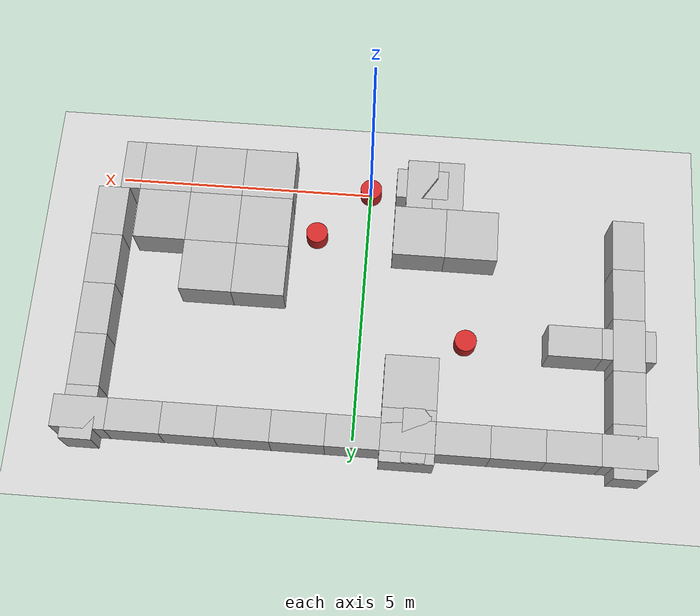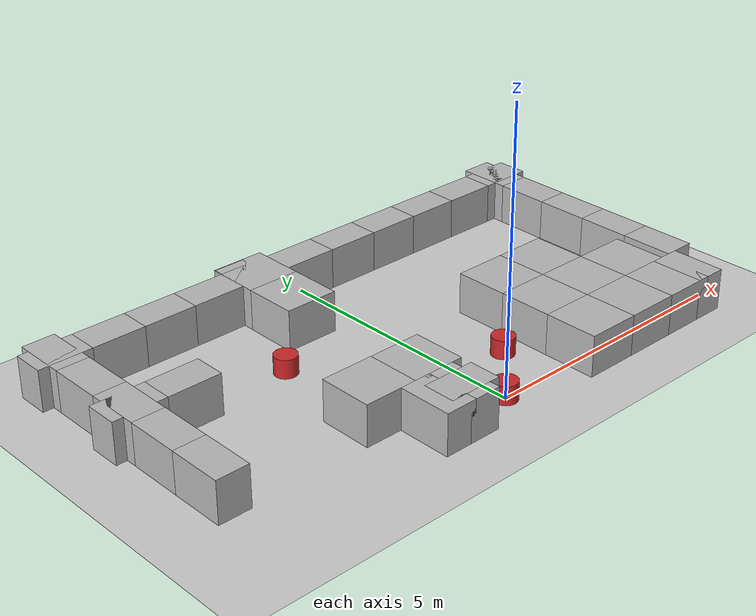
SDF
<sdf version="1.4">
 <world name="default">
  <model name="ground_plane">
   <static>1</static>
   <link name="link">
    <collision name="collision">
     <geometry><plane><normal>0 0 1</normal><size>100 100</size></plane></geometry>
     <surface><friction><ode><mu>100</mu><mu2>50</mu2></ode></friction></surface>
    </collision>
    <visual name="visual">
     <cast_shadows>0</cast_shadows>
     <geometry><plane><normal>0 0 1</normal><size>100 100</size></plane></geometry>
     <material>
      <script><uri>file://media/materials/scripts/gazebo.material</uri><name>Gazebo/Grey</name></script>
     </material>
    </visual>
    <velocity_decay><linear>0</linear><angular>0</angular></velocity_decay>
   </link>
  </model>
  <model name="wall_17">
   <static>1</static>
   <link name="link">
    <pose>0 0 0.25 0 -0 0</pose>
    <collision name="collision"><geometry><box><size>0.6 1 1</size></box></geometry></collision>
    <visual name="visual">
     <geometry>
      <mesh><uri>model://brick_box_3x1x3/meshes/simple_box.dae</uri><scale>0.6 1 1</scale></mesh>
     </geometry>
     <material>
      <script>
       <uri>model://brick_box_3x1x3/materials/scripts</uri>
       <uri>model://brick_box_3x1x3/materials/textures</uri>
       <name>BrickBox/Diffuse</name>
      </script>
     </material>
    </visual>
    <velocity_decay><linear>0</linear><angular>0</angular></velocity_decay>
   </link>
   <pose>5 1 0 0 -0 0</pose>
  </model>
  <model name="wall_18">
   <static>1</static>
   <link name="link">
    <pose>0 0 0.25 0 -0 0</pose>
    <collision name="collision"><geometry><box><size>0.6 1 1</size></box></geometry></collision>
    <visual name="visual">
     <geometry>
      <mesh><uri>model://brick_box_3x1x3/meshes/simple_box.dae</uri><scale>0.6 1 1</scale></mesh>
     </geometry>
     <material>
      <script>
       <uri>model://brick_box_3x1x3/materials/scripts</uri>
       <uri>model://brick_box_3x1x3/materials/textures</uri>
       <name>BrickBox/Diffuse</name>
      </script>
     </material>
    </visual>
    <velocity_decay><linear>0</linear><angular>0</angular></velocity_decay>
   </link>
   <pose>5 2 0 0 -0 0</pose>
  </model>
  <model name="wall_19">
   <static>1</static>
   <link name="link">
    <pose>0 0 0.25 0 -0 0</pose>
    <collision name="collision"><geometry><box><size>0.6 1 1</size></box></geometry></collision>
    <visual name="visual">
     <geometry>
      <mesh><uri>model://brick_box_3x1x3/meshes/simple_box.dae</uri><scale>0.6 1 1</scale></mesh>
     </geometry>
     <material>
      <script>
       <uri>model://brick_box_3x1x3/materials/scripts</uri>
       <uri>model://brick_box_3x1x3/materials/textures</uri>
       <name>BrickBox/Diffuse</name>
      </script>
     </material>
    </visual>
    <velocity_decay><linear>0</linear><angular>0</angular></velocity_decay>
   </link>
   <pose>5 3 0 0 -0 0</pose>
  </model>
  <model name="wall_20">
   <static>1</static>
   <link name="link">
    <pose>0 0 0.25 0 -0 0</pose>
    <collision name="collision"><geometry><box><size>0.6 1 1</size></box></geometry></collision>
    <visual name="visual">
     <geometry>
      <mesh><uri>model://brick_box_3x1x3/meshes/simple_box.dae</uri><scale>0.6 1 1</scale></mesh>
     </geometry>
     <material>
      <script>
       <uri>model://brick_box_3x1x3/materials/scripts</uri>
       <uri>model://brick_box_3x1x3/materials/textures</uri>
       <name>BrickBox/Diffuse</name>
      </script>
     </material>
    </visual>
    <velocity_decay><linear>0</linear><angular>0</angular></velocity_decay>
   </link>
   <pose>5 4 0 0 -0 0</pose>
  </model>
  <model name="wall_21">
   <static>1</static>
   <link name="link">
    <pose>0 0 0.25 0 -0 0</pose>
    <collision name="collision"><geometry><box><size>0.6 1 1</size></box></geometry></collision>
    <visual name="visual">
     <geometry>
      <mesh><uri>model://brick_box_3x1x3/meshes/simple_box.dae</uri><scale>0.6 1 1</scale></mesh>
     </geometry>
     <material>
      <script>
       <uri>model://brick_box_3x1x3/materials/scripts</uri>
       <uri>model://brick_box_3x1x3/materials/textures</uri>
       <name>BrickBox/Diffuse</name>
      </script>
     </material>
    </visual>
    <velocity_decay><linear>0</linear><angular>0</angular></velocity_decay>
   </link>
   <pose>5 5 0 0 -0 0</pose>
  </model>
  <model name="wall_22">
   <static>1</static>
   <link name="link">
    <pose>0 0 0.25 0 -0 0</pose>
    <collision name="collision"><geometry><box><size>1 0.6 1</size></box></geometry></collision>
    <visual name="visual">
     <geometry>
      <mesh><uri>model://brick_box_3x1x3/meshes/simple_box.dae</uri><scale>1 0.6 1</scale></mesh>
     </geometry>
     <material>
      <script>
       <uri>model://brick_box_3x1x3/materials/scripts</uri>
       <uri>model://brick_box_3x1x3/materials/textures</uri>
       <name>BrickBox/Diffuse</name>
      </script>
     </material>
    </visual>
    <velocity_decay><linear>0</linear><angular>0</angular></velocity_decay>
   </link>
   <pose>4 5 0 0 -0 0</pose>
  </model>
  <model name="wall_23">
   <static>1</static>
   <link name="link">
    <pose>0 0 0.25 0 -0 0</pose>
    <collision name="collision"><geometry><box><size>1 0.6 1</size></box></geometry></collision>
    <visual name="visual">
     <geometry>
      <mesh><uri>model://brick_box_3x1x3/meshes/simple_box.dae</uri><scale>1 0.6 1</scale></mesh>
     </geometry>
     <material>
      <script>
       <uri>model://brick_box_3x1x3/materials/scripts</uri>
       <uri>model://brick_box_3x1x3/materials/textures</uri>
       <name>BrickBox/Diffuse</name>
      </script>
     </material>
    </visual>
    <velocity_decay><linear>0</linear><angular>0</angular></velocity_decay>
   </link>
   <pose>5 5 0 0 -0 0</pose>
  </model>
  <model name="wall_24">
   <static>1</static>
   <link name="link">
    <pose>0 0 0.25 0 -0 0</pose>
    <collision name="collision"><geometry><box><size>1 0.6 1</size></box></geometry></collision>
    <visual name="visual">
     <geometry>
      <mesh><uri>model://brick_box_3x1x3/meshes/simple_box.dae</uri><scale>1 0.6 1</scale></mesh>
     </geometry>
     <material>
      <script>
       <uri>model://brick_box_3x1x3/materials/scripts</uri>
       <uri>model://brick_box_3x1x3/materials/textures</uri>
       <name>BrickBox/Diffuse</name>
      </script>
     </material>
    </visual>
    <velocity_decay><linear>0</linear><angular>0</angular></velocity_decay>
   </link>
   <pose>3 5 0 0 -0 0</pose>
  </model>
  <model name="wall_25">
   <static>1</static>
   <link name="link">
    <pose>0 0 0.25 0 -0 0</pose>
    <collision name="collision"><geometry><box><size>1 0.6 1</size></box></geometry></collision>
    <visual name="visual">
     <geometry>
      <mesh><uri>model://brick_box_3x1x3/meshes/simple_box.dae</uri><scale>1 0.6 1</scale></mesh>
     </geometry>
     <material>
      <script>
       <uri>model://brick_box_3x1x3/materials/scripts</uri>
       <uri>model://brick_box_3x1x3/materials/textures</uri>
       <name>BrickBox/Diffuse</name>
      </script>
     </material>
    </visual>
    <velocity_decay><linear>0</linear><angular>0</angular></velocity_decay>
   </link>
   <pose>2 5 0 0 -0 0</pose>
  </model>
  <model name="wall_26">
   <static>1</static>
   <link name="link">
    <pose>0 0 0.25 0 -0 0</pose>
    <collision name="collision"><geometry><box><size>1 0.6 1</size></box></geometry></collision>
    <visual name="visual">
     <geometry>
      <mesh><uri>model://brick_box_3x1x3/meshes/simple_box.dae</uri><scale>1 0.6 1</scale></mesh>
     </geometry>
     <material>
      <script>
       <uri>model://brick_box_3x1x3/materials/scripts</uri>
       <uri>model://brick_box_3x1x3/materials/textures</uri>
       <name>BrickBox/Diffuse</name>
      </script>
     </material>
    </visual>
    <velocity_decay><linear>0</linear><angular>0</angular></velocity_decay>
   </link>
   <pose>1 5 0 0 -0 0</pose>
  </model>
  <model name="wall_28">
   <static>1</static>
   <link name="link">
    <pose>0 0 0.25 0 -0 0</pose>
    <collision name="collision"><geometry><box><size>1 0.6 1</size></box></geometry></collision>
    <visual name="visual">
     <geometry>
      <mesh><uri>model://brick_box_3x1x3/meshes/simple_box.dae</uri><scale>1 0.6 1</scale></mesh>
     </geometry>
     <material>
      <script>
       <uri>model://brick_box_3x1x3/materials/scripts</uri>
       <uri>model://brick_box_3x1x3/materials/textures</uri>
       <name>BrickBox/Diffuse</name>
      </script>
     </material>
    </visual>
    <velocity_decay><linear>0</linear><angular>0</angular></velocity_decay>
   </link>
   <pose>-0.998901 5.00004 0 0 -0 0</pose>
  </model>
  <model name="wall_29">
   <static>1</static>
   <link name="link">
    <pose>0 0 0.25 0 -0 0</pose>
    <collision name="collision"><geometry><box><size>1 0.6 1</size></box></geometry></collision>
    <visual name="visual">
     <geometry>
      <mesh><uri>model://brick_box_3x1x3/meshes/simple_box.dae</uri><scale>1 0.6 1</scale></mesh>
     </geometry>
     <material>
      <script>
       <uri>model://brick_box_3x1x3/materials/scripts</uri>
       <uri>model://brick_box_3x1x3/materials/textures</uri>
       <name>BrickBox/Diffuse</name>
      </script>
     </material>
    </visual>
    <velocity_decay><linear>0</linear><angular>0</angular></velocity_decay>
   </link>
   <pose>-2 5 0 0 -0 0</pose>
  </model>
  <model name="wall_30">
   <static>1</static>
   <link name="link">
    <pose>0 0 0.25 0 -0 0</pose>
    <collision name="collision"><geometry><box><size>1 0.6 1</size></box></geometry></collision>
    <visual name="visual">
     <geometry>
      <mesh><uri>model://brick_box_3x1x3/meshes/simple_box.dae</uri><scale>1 0.6 1</scale></mesh>
     </geometry>
     <material>
      <script>
       <uri>model://brick_box_3x1x3/materials/scripts</uri>
       <uri>model://brick_box_3x1x3/materials/textures</uri>
       <name>BrickBox/Diffuse</name>
      </script>
     </material>
    </visual>
    <velocity_decay><linear>0</linear><angular>0</angular></velocity_decay>
   </link>
   <pose>-3 5 0 0 -0 0</pose>
  </model>
  <model name="wall_31">
   <static>1</static>
   <link name="link">
    <pose>0 0 0.25 0 -0 0</pose>
    <collision name="collision"><geometry><box><size>1 0.6 1</size></box></geometry></collision>
    <visual name="visual">
     <geometry>
      <mesh><uri>model://brick_box_3x1x3/meshes/simple_box.dae</uri><scale>1 0.6 1</scale></mesh>
     </geometry>
     <material>
      <script>
       <uri>model://brick_box_3x1x3/materials/scripts</uri>
       <uri>model://brick_box_3x1x3/materials/textures</uri>
       <name>BrickBox/Diffuse</name>
      </script>
     </material>
    </visual>
    <velocity_decay><linear>0</linear><angular>0</angular></velocity_decay>
   </link>
   <pose>-4 5 0 0 -0 0</pose>
  </model>
  <model name="wall_32">
   <static>1</static>
   <link name="link">
    <pose>0 0 0.25 0 -0 0</pose>
    <collision name="collision"><geometry><box><size>1 0.6 1</size></box></geometry></collision>
    <visual name="visual">
     <geometry>
      <mesh><uri>model://brick_box_3x1x3/meshes/simple_box.dae</uri><scale>1 0.6 1</scale></mesh>
     </geometry>
     <material>
      <script>
       <uri>model://brick_box_3x1x3/materials/scripts</uri>
       <uri>model://brick_box_3x1x3/materials/textures</uri>
       <name>BrickBox/Diffuse</name>
      </script>
     </material>
    </visual>
    <velocity_decay><linear>0</linear><angular>0</angular></velocity_decay>
   </link>
   <pose>-5 5 0 0 -0 0</pose>
  </model>
  <model name="wall_39">
   <static>1</static>
   <link name="link">
    <pose>0 0 0.25 0 -0 0</pose>
    <collision name="collision"><geometry><box><size>0.6 1 1</size></box></geometry></collision>
    <visual name="visual">
     <geometry>
      <mesh><uri>model://brick_box_3x1x3/meshes/simple_box.dae</uri><scale>0.6 1 1</scale></mesh>
     </geometry>
     <material>
      <script>
       <uri>model://brick_box_3x1x3/materials/scripts</uri>
       <uri>model://brick_box_3x1x3/materials/textures</uri>
       <name>BrickBox/Diffuse</name>
      </script>
     </material>
    </visual>
    <velocity_decay><linear>0</linear><angular>0</angular></velocity_decay>
   </link>
   <pose>-5 1 0 0 -0 0</pose>
  </model>
  <model name="wall_40">
   <static>1</static>
   <link name="link">
    <pose>0 0 0.25 0 -0 0</pose>
    <collision name="collision"><geometry><box><size>0.6 1 1</size></box></geometry></collision>
    <visual name="visual">
     <geometry>
      <mesh><uri>model://brick_box_3x1x3/meshes/simple_box.dae</uri><scale>0.6 1 1</scale></mesh>
     </geometry>
     <material>
      <script>
       <uri>model://brick_box_3x1x3/materials/scripts</uri>
       <uri>model://brick_box_3x1x3/materials/textures</uri>
       <name>BrickBox/Diffuse</name>
      </script>
     </material>
    </visual>
    <velocity_decay><linear>0</linear><angular>0</angular></velocity_decay>
   </link>
   <pose>-5 2 0 0 -0 0</pose>
  </model>
  <model name="wall_41">
   <static>1</static>
   <link name="link">
    <pose>0 0 0.25 0 -0 0</pose>
    <collision name="collision"><geometry><box><size>0.6 1 1</size></box></geometry></collision>
    <visual name="visual">
     <geometry>
      <mesh><uri>model://brick_box_3x1x3/meshes/simple_box.dae</uri><scale>0.6 1 1</scale></mesh>
     </geometry>
     <material>
      <script>
       <uri>model://brick_box_3x1x3/materials/scripts</uri>
       <uri>model://brick_box_3x1x3/materials/textures</uri>
       <name>BrickBox/Diffuse</name>
      </script>
     </material>
    </visual>
    <velocity_decay><linear>0</linear><angular>0</angular></velocity_decay>
   </link>
   <pose>-5 3 0 0 -0 0</pose>
  </model>
  <model name="wall_42">
   <static>1</static>
   <link name="link">
    <pose>0 0 0.25 0 -0 0</pose>
    <collision name="collision"><geometry><box><size>0.6 1 1</size></box></geometry></collision>
    <visual name="visual">
     <geometry>
      <mesh><uri>model://brick_box_3x1x3/meshes/simple_box.dae</uri><scale>0.6 1 1</scale></mesh>
     </geometry>
     <material>
      <script>
       <uri>model://brick_box_3x1x3/materials/scripts</uri>
       <uri>model://brick_box_3x1x3/materials/textures</uri>
       <name>BrickBox/Diffuse</name>
      </script>
     </material>
    </visual>
    <velocity_decay><linear>0</linear><angular>0</angular></velocity_decay>
   </link>
   <pose>-5 4 0 0 -0 0</pose>
  </model>
  <model name="wall_43">
   <static>1</static>
   <link name="link">
    <pose>0 0 0.25 0 -0 0</pose>
    <collision name="collision"><geometry><box><size>0.6 1 1</size></box></geometry></collision>
    <visual name="visual">
     <geometry>
      <mesh><uri>model://brick_box_3x1x3/meshes/simple_box.dae</uri><scale>0.6 1 1</scale></mesh>
     </geometry>
     <material>
      <script>
       <uri>model://brick_box_3x1x3/materials/scripts</uri>
       <uri>model://brick_box_3x1x3/materials/textures</uri>
       <name>BrickBox/Diffuse</name>
      </script>
     </material>
    </visual>
    <velocity_decay><linear>0</linear><angular>0</angular></velocity_decay>
   </link>
   <pose>-5 5 0 0 -0 0</pose>
  </model>
  <model name="wall_57">
   <static>1</static>
   <link name="link">
    <pose>0 0 0.25 0 -0 0</pose>
    <collision name="collision"><geometry><box><size>1 0.6 1</size></box></geometry></collision>
    <visual name="visual">
     <geometry>
      <mesh><uri>model://brick_box_3x1x3/meshes/simple_box.dae</uri><scale>1 0.6 1</scale></mesh>
     </geometry>
     <material>
      <script>
       <uri>model://brick_box_3x1x3/materials/scripts</uri>
       <uri>model://brick_box_3x1x3/materials/textures</uri>
       <name>BrickBox/Diffuse</name>
      </script>
     </material>
    </visual>
    <velocity_decay><linear>0</linear><angular>0</angular></velocity_decay>
   </link>
   <pose>-1 0 0 0 -0 0</pose>
  </model>
  <model name="wall_66">
   <static>1</static>
   <link name="link">
    <pose>0 0 0.25 0 -0 0</pose>
    <collision name="collision"><geometry><box><size>1 0.6 1</size></box></geometry></collision>
    <visual name="visual">
     <geometry>
      <mesh><uri>model://brick_box_3x1x3/meshes/simple_box.dae</uri><scale>1 0.6 1</scale></mesh>
     </geometry>
     <material>
      <script>
       <uri>model://brick_box_3x1x3/materials/scripts</uri>
       <uri>model://brick_box_3x1x3/materials/textures</uri>
       <name>BrickBox/Diffuse</name>
      </script>
     </material>
    </visual>
    <velocity_decay><linear>0</linear><angular>0</angular></velocity_decay>
   </link>
   <pose>0 5 0 0 -0 0</pose>
  </model>
  <model name="wall_71">
   <static>1</static>
   <link name="link">
    <pose>0 0 0.25 0 -0 0</pose>
    <collision name="collision"><geometry><box><size>1 0.6 1</size></box></geometry></collision>
    <visual name="visual">
     <geometry>
      <mesh><uri>model://brick_box_3x1x3/meshes/simple_box.dae</uri><scale>1 0.6 1</scale></mesh>
     </geometry>
     <material>
      <script>
       <uri>model://brick_box_3x1x3/materials/scripts</uri>
       <uri>model://brick_box_3x1x3/materials/textures</uri>
       <name>BrickBox/Diffuse</name>
      </script>
     </material>
    </visual>
    <velocity_decay><linear>0</linear><angular>0</angular></velocity_decay>
   </link>
   <pose>-5 3 0 0 -0 0</pose>
  </model>
  <model name="wall_72">
   <static>1</static>
   <link name="link">
    <pose>0 0 0.25 0 -0 0</pose>
    <collision name="collision"><geometry><box><size>1 0.6 1</size></box></geometry></collision>
    <visual name="visual">
     <geometry>
      <mesh><uri>model://brick_box_3x1x3/meshes/simple_box.dae</uri><scale>1 0.6 1</scale></mesh>
     </geometry>
     <material>
      <script>
       <uri>model://brick_box_3x1x3/materials/scripts</uri>
       <uri>model://brick_box_3x1x3/materials/textures</uri>
       <name>BrickBox/Diffuse</name>
      </script>
     </material>
    </visual>
    <velocity_decay><linear>0</linear><angular>0</angular></velocity_decay>
   </link>
   <pose>-4 3 0 0 -0 0</pose>
  </model>
  <model name="wall_79">
   <static>1</static>
   <link name="link">
    <pose>0 0 0.25 0 -0 0</pose>
    <collision name="collision"><geometry><box><size>0.6 1 1</size></box></geometry></collision>
    <visual name="visual">
     <geometry>
      <mesh><uri>model://brick_box_3x1x3/meshes/simple_box.dae</uri><scale>0.6 1 1</scale></mesh>
     </geometry>
     <material>
      <script>
       <uri>model://brick_box_3x1x3/materials/scripts</uri>
       <uri>model://brick_box_3x1x3/materials/textures</uri>
       <name>BrickBox/Diffuse</name>
      </script>
     </material>
    </visual>
    <velocity_decay><linear>0</linear><angular>0</angular></velocity_decay>
   </link>
   <pose>-1.5032 0 0 0 -0 0</pose>
  </model>
  <model name="wall_80">
   <static>1</static>
   <link name="link">
    <pose>0 0 0.25 0 -0 0</pose>
    <collision name="collision"><geometry><box><size>0.6 1 1</size></box></geometry></collision>
    <visual name="visual">
     <geometry>
      <mesh><uri>model://brick_box_3x1x3/meshes/simple_box.dae</uri><scale>0.6 1 1</scale></mesh>
     </geometry>
     <material>
      <script>
       <uri>model://brick_box_3x1x3/materials/scripts</uri>
       <uri>model://brick_box_3x1x3/materials/textures</uri>
       <name>BrickBox/Diffuse</name>
      </script>
     </material>
    </visual>
    <velocity_decay><linear>0</linear><angular>0</angular></velocity_decay>
   </link>
   <pose>-1 0 0 0 -0 0</pose>
  </model>
  <model name="wall_86">
   <static>1</static>
   <link name="link">
    <pose>0 0 0.25 0 -0 0</pose>
    <collision name="collision"><geometry><box><size>0.6 1 1</size></box></geometry></collision>
    <visual name="visual">
     <geometry>
      <mesh><uri>model://brick_box_3x1x3/meshes/simple_box.dae</uri><scale>0.6 1 1</scale></mesh>
     </geometry>
     <material>
      <script>
       <uri>model://brick_box_3x1x3/materials/scripts</uri>
       <uri>model://brick_box_3x1x3/materials/textures</uri>
       <name>BrickBox/Diffuse</name>
      </script>
     </material>
    </visual>
    <velocity_decay><linear>0</linear><angular>0</angular></velocity_decay>
   </link>
   <pose>-1.19064 4.98314 0 0 -0 0</pose>
  </model>
  <model name="wall_108">
   <static>1</static>
   <link name="link">
    <pose>0 0 0.25 0 -0 0</pose>
    <collision name="collision"><geometry><box><size>0.6 1 1</size></box></geometry></collision>
    <visual name="visual">
     <geometry>
      <mesh><uri>model://brick_box_3x1x3/meshes/simple_box.dae</uri><scale>0.6 1 1</scale></mesh>
     </geometry>
     <material>
      <script>
       <uri>model://brick_box_3x1x3/materials/scripts</uri>
       <uri>model://brick_box_3x1x3/materials/textures</uri>
       <name>BrickBox/Diffuse</name>
      </script>
     </material>
    </visual>
    <velocity_decay><linear>0</linear><angular>0</angular></velocity_decay>
   </link>
   <pose>4.58016 0 0 0 -0 0</pose>
  </model>
  <model name="movable_1">
   <link name="gl_">
    <collision name="collision">
     <geometry><cylinder><radius>0.21</radius><length>0.35</length></cylinder></geometry>
    </collision>
    <visual name="visual">
     <geometry><cylinder><radius>0.21</radius><length>0.35</length></cylinder></geometry>
     <material>
      <script><uri>file://media/materials/scripts/gazebo.material</uri><name>Gazebo/Red</name></script>
     </material>
    </visual>
    <velocity_decay><linear>0</linear><angular>0</angular></velocity_decay>
    <inertial>
     <inertia><ixx>1</ixx><ixy>0</ixy><ixz>0</ixz><iyy>1</iyy><iyz>0</iyz><izz>1</izz></inertia>
     <mass>1</mass>
    </inertial>
   </link>
   <static>0</static>
   <pose>0 -0 0.174991 0 -0 0</pose>
  </model>
  <model name="movable_2">
   <link name="gl_">
    <collision name="collision">
     <geometry><cylinder><radius>0.21</radius><length>0.35</length></cylinder></geometry>
    </collision>
    <visual name="visual">
     <geometry><cylinder><radius>0.21</radius><length>0.35</length></cylinder></geometry>
     <material>
      <script><uri>file://media/materials/scripts/gazebo.material</uri><name>Gazebo/Red</name></script>
     </material>
    </visual>
    <velocity_decay><linear>0</linear><angular>0</angular></velocity_decay>
    <inertial>
     <inertia><ixx>1</ixx><ixy>0</ixy><ixz>0</ixz><iyy>1</iyy><iyz>0</iyz><izz>1</izz></inertia>
     <mass>1</mass>
    </inertial>
   </link>
   <static>0</static>
   <pose>1 1 0.174991 0 -0 0</pose>
  </model>
  <model name="movable_3">
   <link name="gl_">
    <collision name="collision">
     <geometry><cylinder><radius>0.21</radius><length>0.35</length></cylinder></geometry>
    </collision>
    <visual name="visual">
     <geometry><cylinder><radius>0.21</radius><length>0.35</length></cylinder></geometry>
     <material>
      <script><uri>file://media/materials/scripts/gazebo.material</uri><name>Gazebo/Red</name></script>
     </material>
    </visual>
    <velocity_decay><linear>0</linear><angular>0</angular></velocity_decay>
    <inertial>
     <inertia><ixx>1</ixx><ixy>0</ixy><ixz>0</ixz><iyy>1</iyy><iyz>0</iyz><izz>1</izz></inertia>
     <mass>1</mass>
    </inertial>
   </link>
   <static>0</static>
   <pose>-2 3 0.174991 0 -0 0</pose>
  </model>
  <model name="wall_63">
   <static>1</static>
   <link name="link">
    <pose>0 0 0.25 0 -0 0</pose>
    <collision name="collision"><geometry><box><size>1 1 1</size></box></geometry></collision>
    <visual name="visual">
     <geometry><mesh><uri>model://brick_box_3x1x3/meshes/simple_box.dae</uri><scale>1 1 1</scale></mesh></geometry>
     <material>
      <script>
       <uri>model://brick_box_3x1x3/materials/scripts</uri>
       <uri>model://brick_box_3x1x3/materials/textures</uri>
       <name>BrickBox/Diffuse</name>
      </script>
     </material>
    </visual>
    <velocity_decay><linear>0</linear><angular>0</angular></velocity_decay>
   </link>
   <pose>-2 1 0 0 -0 0</pose>
  </model>
  <model name="wall_64">
   <static>1</static>
   <link name="link">
    <pose>0 0 0.25 0 -0 0</pose>
    <collision name="collision"><geometry><box><size>1 1 1</size></box></geometry></collision>
    <visual name="visual">
     <geometry><mesh><uri>model://brick_box_3x1x3/meshes/simple_box.dae</uri><scale>1 1 1</scale></mesh></geometry>
     <material>
      <script>
       <uri>model://brick_box_3x1x3/materials/scripts</uri>
       <uri>model://brick_box_3x1x3/materials/textures</uri>
       <name>BrickBox/Diffuse</name>
      </script>
     </material>
    </visual>
    <velocity_decay><linear>0</linear><angular>0</angular></velocity_decay>
   </link>
   <pose>-1 1 0 0 -0 0</pose>
  </model>
  <model name="wall_65">
   <static>1</static>
   <link name="link">
    <pose>0 0 0.25 0 -0 0</pose>
    <collision name="collision"><geometry><box><size>1 1 1</size></box></geometry></collision>
    <visual name="visual">
     <geometry><mesh><uri>model://brick_box_3x1x3/meshes/simple_box.dae</uri><scale>1 1 1</scale></mesh></geometry>
     <material>
      <script>
       <uri>model://brick_box_3x1x3/materials/scripts</uri>
       <uri>model://brick_box_3x1x3/materials/textures</uri>
       <name>BrickBox/Diffuse</name>
      </script>
     </material>
    </visual>
    <velocity_decay><linear>0</linear><angular>0</angular></velocity_decay>
   </link>
   <pose>-1 5 0 0 -0 0</pose>
  </model>
  <model name="wall_67">
   <static>1</static>
   <link name="link">
    <pose>0 0 0.25 0 -0 0</pose>
    <collision name="collision"><geometry><box><size>1 1 1</size></box></geometry></collision>
    <visual name="visual">
     <geometry><mesh><uri>model://brick_box_3x1x3/meshes/simple_box.dae</uri><scale>1 1 1</scale></mesh></geometry>
     <material>
      <script>
       <uri>model://brick_box_3x1x3/materials/scripts</uri>
       <uri>model://brick_box_3x1x3/materials/textures</uri>
       <name>BrickBox/Diffuse</name>
      </script>
     </material>
    </visual>
    <velocity_decay><linear>0</linear><angular>0</angular></velocity_decay>
   </link>
   <pose>-1 4 0 0 -0 0</pose>
  </model>
  <model name="wall_68">
   <static>1</static>
   <link name="link">
    <pose>0 0 0.25 0 -0 0</pose>
    <collision name="collision"><geometry><box><size>1 1 1</size></box></geometry></collision>
    <visual name="visual">
     <geometry><mesh><uri>model://brick_box_3x1x3/meshes/simple_box.dae</uri><scale>1 1 1</scale></mesh></geometry>
     <material>
      <script>
       <uri>model://brick_box_3x1x3/materials/scripts</uri>
       <uri>model://brick_box_3x1x3/materials/textures</uri>
       <name>BrickBox/Diffuse</name>
      </script>
     </material>
    </visual>
    <velocity_decay><linear>0</linear><angular>0</angular></velocity_decay>
   </link>
   <pose>2 2 0 0 -0 0</pose>
  </model>
  <model name="wall_73">
   <static>1</static>
   <link name="link">
    <pose>0 0 0.25 0 -0 0</pose>
    <collision name="collision"><geometry><box><size>1 1 1</size></box></geometry></collision>
    <visual name="visual">
     <geometry><mesh><uri>model://brick_box_3x1x3/meshes/simple_box.dae</uri><scale>1 1 1</scale></mesh></geometry>
     <material>
      <script>
       <uri>model://brick_box_3x1x3/materials/scripts</uri>
       <uri>model://brick_box_3x1x3/materials/textures</uri>
       <name>BrickBox/Diffuse</name>
      </script>
     </material>
    </visual>
    <velocity_decay><linear>0</linear><angular>0</angular></velocity_decay>
   </link>
   <pose>3 2 0 0 -0 0</pose>
  </model>
  <model name="wall_87">
   <static>1</static>
   <link name="link">
    <pose>0 0 0.25 0 -0 0</pose>
    <collision name="collision"><geometry><box><size>1 1 1</size></box></geometry></collision>
    <visual name="visual">
     <geometry><mesh><uri>model://brick_box_3x1x3/meshes/simple_box.dae</uri><scale>1 1 1</scale></mesh></geometry>
     <material>
      <script>
       <uri>model://brick_box_3x1x3/materials/scripts</uri>
       <uri>model://brick_box_3x1x3/materials/textures</uri>
       <name>BrickBox/Diffuse</name>
      </script>
     </material>
    </visual>
    <velocity_decay><linear>0</linear><angular>0</angular></velocity_decay>
   </link>
   <pose>2 0 0 0 -0 0</pose>
  </model>
  <model name="wall_93">
   <static>1</static>
   <link name="link">
    <pose>0 0 0.25 0 -0 0</pose>
    <collision name="collision"><geometry><box><size>1 1 1</size></box></geometry></collision>
    <visual name="visual">
     <geometry><mesh><uri>model://brick_box_3x1x3/meshes/simple_box.dae</uri><scale>1 1 1</scale></mesh></geometry>
     <material>
      <script>
       <uri>model://brick_box_3x1x3/materials/scripts</uri>
       <uri>model://brick_box_3x1x3/materials/textures</uri>
       <name>BrickBox/Diffuse</name>
      </script>
     </material>
    </visual>
    <velocity_decay><linear>0</linear><angular>0</angular></velocity_decay>
   </link>
   <pose>2 1 0 0 -0 0</pose>
  </model>
  <model name="wall_94">
   <static>1</static>
   <link name="link">
    <pose>0 0 0.25 0 -0 0</pose>
    <collision name="collision"><geometry><box><size>1 1 1</size></box></geometry></collision>
    <visual name="visual">
     <geometry><mesh><uri>model://brick_box_3x1x3/meshes/simple_box.dae</uri><scale>1 1 1</scale></mesh></geometry>
     <material>
      <script>
       <uri>model://brick_box_3x1x3/materials/scripts</uri>
       <uri>model://brick_box_3x1x3/materials/textures</uri>
       <name>BrickBox/Diffuse</name>
      </script>
     </material>
    </visual>
    <velocity_decay><linear>0</linear><angular>0</angular></velocity_decay>
   </link>
   <pose>3 0 0 0 -0 0</pose>
  </model>
  <model name="wall_95">
   <static>1</static>
   <link name="link">
    <pose>0 0 0.25 0 -0 0</pose>
    <collision name="collision"><geometry><box><size>1 1 1</size></box></geometry></collision>
    <visual name="visual">
     <geometry><mesh><uri>model://brick_box_3x1x3/meshes/simple_box.dae</uri><scale>1 1 1</scale></mesh></geometry>
     <material>
      <script>
       <uri>model://brick_box_3x1x3/materials/scripts</uri>
       <uri>model://brick_box_3x1x3/materials/textures</uri>
       <name>BrickBox/Diffuse</name>
      </script>
     </material>
    </visual>
    <velocity_decay><linear>0</linear><angular>0</angular></velocity_decay>
   </link>
   <pose>3 1 0 0 -0 0</pose>
  </model>
  <model name="wall_111">
   <static>1</static>
   <link name="link">
    <pose>0 0 0.25 0 -0 0</pose>
    <collision name="collision"><geometry><box><size>1 1 1</size></box></geometry></collision>
    <visual name="visual">
     <geometry><mesh><uri>model://brick_box_3x1x3/meshes/simple_box.dae</uri><scale>1 1 1</scale></mesh></geometry>
     <material>
      <script>
       <uri>model://brick_box_3x1x3/materials/scripts</uri>
       <uri>model://brick_box_3x1x3/materials/textures</uri>
       <name>BrickBox/Diffuse</name>
      </script>
     </material>
    </visual>
    <velocity_decay><linear>0</linear><angular>0</angular></velocity_decay>
   </link>
   <pose>4 0 0 0 -0 0</pose>
  </model>
  <model name="wall_112">
   <static>1</static>
   <link name="link">
    <pose>0 0 0.25 0 -0 0</pose>
    <collision name="collision"><geometry><box><size>1 1 1</size></box></geometry></collision>
    <visual name="visual">
     <geometry><mesh><uri>model://brick_box_3x1x3/meshes/simple_box.dae</uri><scale>1 1 1</scale></mesh></geometry>
     <material>
      <script>
       <uri>model://brick_box_3x1x3/materials/scripts</uri>
       <uri>model://brick_box_3x1x3/materials/textures</uri>
       <name>BrickBox/Diffuse</name>
      </script>
     </material>
    </visual>
    <velocity_decay><linear>0</linear><angular>0</angular></velocity_decay>
   </link>
   <pose>4 1 0 0 -0 0</pose>
  </model>
 </world>
</sdf>
